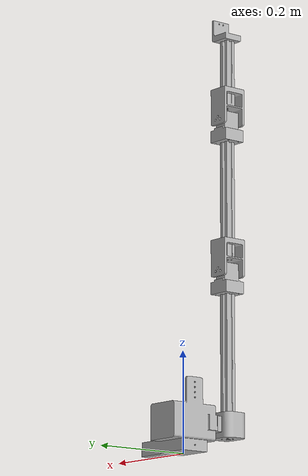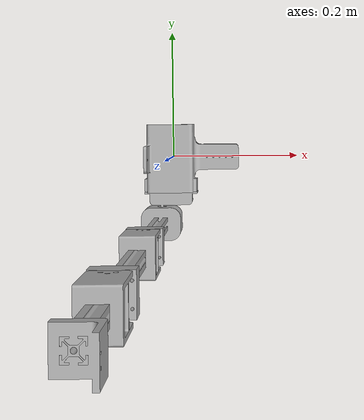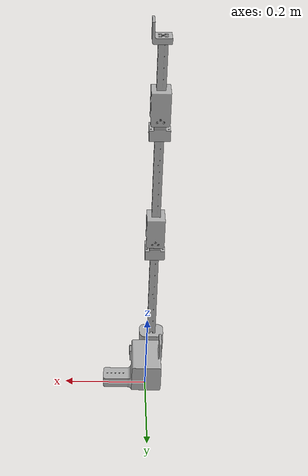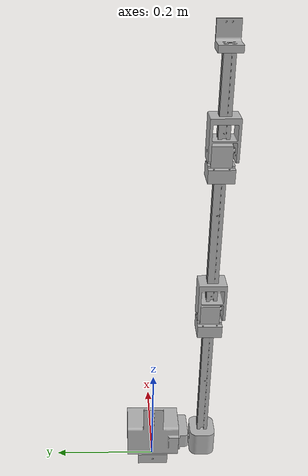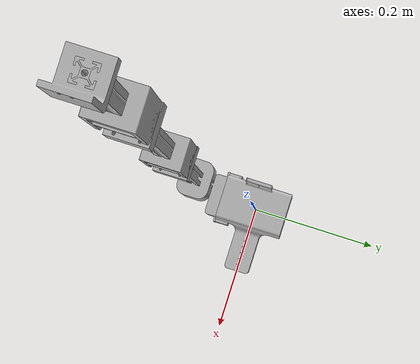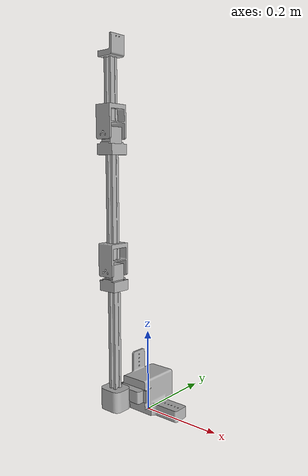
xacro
<?xml version="1.0" ?>
<robot name="Manip_revis" xmlns:xacro="http://www.ros.org/wiki/xacro">

<xacro:include filename="$(find manip_revis_description)/urdf/materials.xacro" />
<xacro:include filename="$(find manip_revis_description)/urdf/Manip_revis.ros2control" />
<xacro:include filename="$(find manip_revis_description)/urdf/Manip_revis.gazebo" />
<link name="world"/>
<joint name="world_to_base" type="fixed">
  <parent link="world"/>
  <child link="base_link"/>
  <origin xyz="0 0 0" rpy="0 0 0"/>
</joint>
<link name="base_link">
  <inertial>
    <origin xyz="0.009155815108888382 0.0034514828401321783 0.04700095003612501" rpy="0 0 0"/>
    <mass value="4.33480004831894"/>
    <inertia ixx="0.00709" iyy="0.008382" izz="0.007647" ixy="0.000137" iyz="-0.000195" ixz="0.001478"/>
  </inertial>
  <visual>
    <origin xyz="0 0 0" rpy="0 0 0"/>
    <geometry>
      <mesh filename="package://manip_revis_description/meshes/base_link.stl" scale="0.001 0.001 0.001"/>
    </geometry>
    <material name="silver"/>
  </visual>
  <collision>
    <origin xyz="0 0 0" rpy="0 0 0"/>
    <geometry>
      <mesh filename="package://manip_revis_description/meshes/base_link.stl" scale="0.001 0.001 0.001"/>
    </geometry>
  </collision>
</link>

<link name="suporte_ombro">
  <inertial>
    <origin xyz="-0.0325539842183545 0.0053685899054949915 -3.95516952522712e-16" rpy="0 0 0"/>
    <mass value="0.7923110570486152"/>
    <inertia ixx="0.00023" iyy="0.000347" izz="0.000459" ixy="-1e-06" iyz="0.0" ixz="-0.0"/>
  </inertial>
  <visual>
    <origin xyz="-0.0325 0.052 -0.06" rpy="0 0 0"/>
    <geometry>
      <mesh filename="package://manip_revis_description/meshes/suporte_ombro.stl" scale="0.001 0.001 0.001"/>
    </geometry>
    <material name="silver"/>
  </visual>
  <collision>
    <origin xyz="-0.0325 0.052 -0.06" rpy="0 0 0"/>
    <geometry>
      <mesh filename="package://manip_revis_description/meshes/suporte_ombro.stl" scale="0.001 0.001 0.001"/>
    </geometry>
  </collision>
</link>

<link name="elo_ombro">
  <inertial>
    <origin xyz="3.991598718222633e-15 -0.02209521446720704 -5.273559366969494e-16" rpy="0 0 0"/>
    <mass value="1.0271366636708665"/>
    <inertia ixx="0.000419" iyy="0.000511" izz="0.0005" ixy="-0.0" iyz="-0.0" ixz="-0.0"/>
  </inertial>
  <visual>
    <origin xyz="0.015 0.0785 -0.06" rpy="0 0 0"/>
    <geometry>
      <mesh filename="package://manip_revis_description/meshes/elo_ombro.stl" scale="0.001 0.001 0.001"/>
    </geometry>
    <material name="silver"/>
  </visual>
  <collision>
    <origin xyz="0.015 0.0785 -0.06" rpy="0 0 0"/>
    <geometry>
      <mesh filename="package://manip_revis_description/meshes/elo_ombro.stl" scale="0.001 0.001 0.001"/>
    </geometry>
  </collision>
</link>

<link name="braco">
  <inertial>
    <origin xyz="-0.004000000000000281 5.471363147269148e-08 0.1501179664756108" rpy="0 0 0"/>
    <mass value="0.12911789574228458"/>
    <inertia ixx="0.000973" iyy="0.000973" izz="1.1e-05" ixy="0.0" iyz="0.0" ixz="0.0"/>
  </inertial>
  <visual>
    <origin xyz="0.011 0.1005 -0.035" rpy="0 0 0"/>
    <geometry>
      <mesh filename="package://manip_revis_description/meshes/braco.stl" scale="0.001 0.001 0.001"/>
    </geometry>
    <material name="silver"/>
  </visual>
  <collision>
    <origin xyz="0.011 0.1005 -0.035" rpy="0 0 0"/>
    <geometry>
      <mesh filename="package://manip_revis_description/meshes/braco.stl" scale="0.001 0.001 0.001"/>
    </geometry>
  </collision>
</link>

<link name="garfo_cotovelo_1">
  <inertial>
    <origin xyz="0.003949880865941452 -2.413930591943503e-07 -0.0029384133486902164" rpy="0 0 0"/>
    <mass value="0.3034443651771143"/>
    <inertia ixx="7.9e-05" iyy="7.8e-05" izz="0.000127" ixy="-0.0" iyz="0.0" ixz="-0.0"/>
  </inertial>
  <visual>
    <origin xyz="0.019 0.1005 -0.335" rpy="0 0 0"/>
    <geometry>
      <mesh filename="package://manip_revis_description/meshes/garfo_cotovelo_1.stl" scale="0.001 0.001 0.001"/>
    </geometry>
    <material name="silver"/>
  </visual>
  <collision>
    <origin xyz="0.019 0.1005 -0.335" rpy="0 0 0"/>
    <geometry>
      <mesh filename="package://manip_revis_description/meshes/garfo_cotovelo_1.stl" scale="0.001 0.001 0.001"/>
    </geometry>
  </collision>
</link>

<link name="garfo_cotovelo_2">
  <inertial>
    <origin xyz="-2.4494295480792516e-15 -7.067951739336831e-05 0.02354307476678441" rpy="0 0 0"/>
    <mass value="0.3465493378432902"/>
    <inertia ixx="0.000102" iyy="8.3e-05" izz="5.7e-05" ixy="-0.0" iyz="0.0" ixz="0.0"/>
  </inertial>
  <visual>
    <origin xyz="0.015 0.1005 -0.335" rpy="0 0 0"/>
    <geometry>
      <mesh filename="package://manip_revis_description/meshes/garfo_cotovelo_2.stl" scale="0.001 0.001 0.001"/>
    </geometry>
    <material name="silver"/>
  </visual>
  <collision>
    <origin xyz="0.015 0.1005 -0.335" rpy="0 0 0"/>
    <geometry>
      <mesh filename="package://manip_revis_description/meshes/garfo_cotovelo_2.stl" scale="0.001 0.001 0.001"/>
    </geometry>
  </collision>
</link>

<link name="elo_cotovelo">
  <inertial>
    <origin xyz="3.869193333783105e-11 0.020782878183679854 0.031157961678787427" rpy="0 0 0"/>
    <mass value="0.37940108482400686"/>
    <inertia ixx="0.000347" iyy="0.000253" izz="0.000213" ixy="-0.0" iyz="-0.0" ixz="0.0"/>
  </inertial>
  <visual>
    <origin xyz="0.015 0.122901 -0.371" rpy="0 0 0"/>
    <geometry>
      <mesh filename="package://manip_revis_description/meshes/elo_cotovelo.stl" scale="0.001 0.001 0.001"/>
    </geometry>
    <material name="silver"/>
  </visual>
  <collision>
    <origin xyz="0.015 0.122901 -0.371" rpy="0 0 0"/>
    <geometry>
      <mesh filename="package://manip_revis_description/meshes/elo_cotovelo.stl" scale="0.001 0.001 0.001"/>
    </geometry>
  </collision>
</link>

<link name="antebraco">
  <inertial>
    <origin xyz="9.384793143996095e-09 2.9592124473065695e-07 0.1250833750583238" rpy="0 0 0"/>
    <mass value="0.10755720068938877"/>
    <inertia ixx="0.000564" iyy="0.000564" izz="9e-06" ixy="0.0" iyz="0.0" ixz="0.0"/>
  </inertial>
  <visual>
    <origin xyz="0.015 0.102141 -0.393" rpy="0 0 0"/>
    <geometry>
      <mesh filename="package://manip_revis_description/meshes/antebraco.stl" scale="0.001 0.001 0.001"/>
    </geometry>
    <material name="silver"/>
  </visual>
  <collision>
    <origin xyz="0.015 0.102141 -0.393" rpy="0 0 0"/>
    <geometry>
      <mesh filename="package://manip_revis_description/meshes/antebraco.stl" scale="0.001 0.001 0.001"/>
    </geometry>
  </collision>
</link>

<link name="garfo_punho_1">
  <inertial>
    <origin xyz="0.003950612913704705 4.880532458173548e-07 -0.0029384127824459982" rpy="0 0 0"/>
    <mass value="0.3034443651771143"/>
    <inertia ixx="7.9e-05" iyy="7.8e-05" izz="0.000127" ixy="-0.0" iyz="-0.0" ixz="0.0"/>
  </inertial>
  <visual>
    <origin xyz="0.019 0.102141 -0.643" rpy="0 0 0"/>
    <geometry>
      <mesh filename="package://manip_revis_description/meshes/garfo_punho_1.stl" scale="0.001 0.001 0.001"/>
    </geometry>
    <material name="silver"/>
  </visual>
  <collision>
    <origin xyz="0.019 0.102141 -0.643" rpy="0 0 0"/>
    <geometry>
      <mesh filename="package://manip_revis_description/meshes/garfo_punho_1.stl" scale="0.001 0.001 0.001"/>
    </geometry>
  </collision>
</link>

<link name="garfo_punho_2">
  <inertial>
    <origin xyz="-2.7998436902265667e-15 -7.043285720688408e-05 0.023543075333028685" rpy="0 0 0"/>
    <mass value="0.3465493378432902"/>
    <inertia ixx="0.000102" iyy="8.3e-05" izz="5.7e-05" ixy="-0.0" iyz="0.0" ixz="-0.0"/>
  </inertial>
  <visual>
    <origin xyz="0.015 0.102141 -0.643" rpy="0 0 0"/>
    <geometry>
      <mesh filename="package://manip_revis_description/meshes/garfo_punho_2.stl" scale="0.001 0.001 0.001"/>
    </geometry>
    <material name="silver"/>
  </visual>
  <collision>
    <origin xyz="0.015 0.102141 -0.643" rpy="0 0 0"/>
    <geometry>
      <mesh filename="package://manip_revis_description/meshes/garfo_punho_2.stl" scale="0.001 0.001 0.001"/>
    </geometry>
  </collision>
</link>

<link name="elo_punho">
  <inertial>
    <origin xyz="3.869436715486785e-11 0.020783124843866366 0.031157962245031756" rpy="0 0 0"/>
    <mass value="0.37940108482400686"/>
    <inertia ixx="0.000347" iyy="0.000253" izz="0.000213" ixy="-0.0" iyz="-0.0" ixz="0.0"/>
  </inertial>
  <visual>
    <origin xyz="0.015 0.124542 -0.679" rpy="0 0 0"/>
    <geometry>
      <mesh filename="package://manip_revis_description/meshes/elo_punho.stl" scale="0.001 0.001 0.001"/>
    </geometry>
    <material name="silver"/>
  </visual>
  <collision>
    <origin xyz="0.015 0.124542 -0.679" rpy="0 0 0"/>
    <geometry>
      <mesh filename="package://manip_revis_description/meshes/elo_punho.stl" scale="0.001 0.001 0.001"/>
    </geometry>
  </collision>
</link>

<link name="suporte_efetuador">
  <inertial>
    <origin xyz="-1.2333883914195098e-15 5.480340106722714e-07 0.07513000499949785" rpy="0 0 0"/>
    <mass value="0.06455894785914394"/>
    <inertia ixx="0.000123" iyy="0.000123" izz="5e-06" ixy="0.0" iyz="0.0" ixz="-0.0"/>
  </inertial>
  <visual>
    <origin xyz="0.015 0.103782 -0.701" rpy="0 0 0"/>
    <geometry>
      <mesh filename="package://manip_revis_description/meshes/suporte_efetuador.stl" scale="0.001 0.001 0.001"/>
    </geometry>
    <material name="silver"/>
  </visual>
  <collision>
    <origin xyz="0.015 0.103782 -0.701" rpy="0 0 0"/>
    <geometry>
      <mesh filename="package://manip_revis_description/meshes/suporte_efetuador.stl" scale="0.001 0.001 0.001"/>
    </geometry>
  </collision>
</link>

<link name="flange_ferramenta">
  <inertial>
    <origin xyz="0.007581862842638972 0.004000493320373694 0.00022481405314167535" rpy="0 0 0"/>
    <mass value="0.1891882730231785"/>
    <inertia ixx="5.2e-05" iyy="5.8e-05" izz="5.9e-05" ixy="-0.0" iyz="-0.0" ixz="-1.5e-05"/>
  </inertial>
  <visual>
    <origin xyz="0.015 0.107782 -0.851" rpy="0 0 0"/>
    <geometry>
      <mesh filename="package://manip_revis_description/meshes/flange_ferramenta.stl" scale="0.001 0.001 0.001"/>
    </geometry>
    <material name="silver"/>
  </visual>
  <collision>
    <origin xyz="0.015 0.107782 -0.851" rpy="0 0 0"/>
    <geometry>
      <mesh filename="package://manip_revis_description/meshes/flange_ferramenta.stl" scale="0.001 0.001 0.001"/>
    </geometry>
  </collision>
</link>

<joint name="fixo_suporte_ombro" type="fixed">
  <origin xyz="0.0325 -0.052 0.06" rpy="0 0 0"/>
  <parent link="base_link"/>
  <child link="suporte_ombro"/>
</joint>

<joint name="junta_ombro" type="revolute">
  <origin xyz="-0.0475 -0.0265 0.0" rpy="0 0 0"/>
  <limit lower="-1.57" upper="1.57" effort="15.0" velocity="2.0"/>
  <parent link="suporte_ombro"/>
  <child link="elo_ombro"/>
  <axis xyz="0.0 -1.0 0.0"/>
</joint>

<joint name="fixo_braco" type="fixed">
  <origin xyz="0.004 -0.022 -0.025" rpy="0 0 0"/>
  <parent link="elo_ombro"/>
  <child link="braco"/>
</joint>

<joint name="fixo_garfo_cotovelo_1" type="fixed">
  <origin xyz="-0.008 0.0 0.3" rpy="0 0 0"/>
  <parent link="braco"/>
  <child link="garfo_cotovelo_1"/>
</joint>

<joint name="fixo_garfo_cotovelo_2" type="fixed">
  <origin xyz="-0.004 0.0 0.3" rpy="0 0 0"/>
  <parent link="braco"/>
  <child link="garfo_cotovelo_2"/>
</joint>

<joint name="junta_cotovelo" type="revolute">
  <origin xyz="0.0 -0.022401 0.036" rpy="0 0 0"/>
  <limit lower="-1.57" upper="1.57" effort="15.0" velocity="2.0"/>
  <parent link="garfo_cotovelo_2"/>
  <child link="elo_cotovelo"/>
  <axis xyz="-0.0 -1.0 0.0"/>
</joint>

<joint name="fixo_antebraco" type="fixed">
  <origin xyz="0.0 0.02076 0.022" rpy="0 0 0"/>
  <parent link="elo_cotovelo"/>
  <child link="antebraco"/>
</joint>

<joint name="fixo_garfo_punho_1" type="fixed">
  <origin xyz="-0.004 0.0 0.25" rpy="0 0 0"/>
  <parent link="antebraco"/>
  <child link="garfo_punho_1"/>
</joint>

<joint name="fixo_garfo_punho_2" type="fixed">
  <origin xyz="0.0 0.0 0.25" rpy="0 0 0"/>
  <parent link="antebraco"/>
  <child link="garfo_punho_2"/>
</joint>

<joint name="junta_punho" type="revolute">
  <origin xyz="0.0 -0.022401 0.036" rpy="0 0 0"/>
  <limit lower="-1.57" upper="1.57" effort="15.0" velocity="2.0"/>
  <parent link="garfo_punho_2"/>
  <child link="elo_punho"/>
  <axis xyz="-0.0 -1.0 0.0"/>
</joint>

<joint name="fixo_suporte_efetuador" type="fixed">
  <origin xyz="0.0 0.02076 0.022" rpy="0 0 0"/>
  <parent link="elo_punho"/>
  <child link="suporte_efetuador"/>
</joint>

<joint name="fixo_flange_ferramenta" type="fixed">
  <origin xyz="0.0 -0.004 0.15" rpy="0 0 0"/>
  <parent link="suporte_efetuador"/>
  <child link="flange_ferramenta"/>
</joint>

</robot>

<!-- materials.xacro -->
<robot name="Manip_revis" xmlns:xacro="http://www.ros.org/wiki/xacro" >

<material name="silver">
  <color rgba="0.700 0.700 0.700 1.000"/>
</material>

</robot>

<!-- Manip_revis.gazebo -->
<robot name="Manip_revis" xmlns:xacro="http://www.ros.org/wiki/xacro" >

<xacro:property name="body_color" value="Gazebo/Silver" />

<gazebo reference="base_link">
  <material>${body_color}</material>
  <mu1>0.2</mu1>
  <mu2>0.2</mu2>
  <self_collide>true</self_collide>
  <gravity>true</gravity>
</gazebo>

<gazebo reference="suporte_ombro">
  <material>${body_color}</material>
  <mu1>0.2</mu1>
  <mu2>0.2</mu2>
  <self_collide>true</self_collide>
</gazebo>

<gazebo reference="elo_ombro">
  <material>${body_color}</material>
  <mu1>0.2</mu1>
  <mu2>0.2</mu2>
  <self_collide>true</self_collide>
</gazebo>

<gazebo reference="braco">
  <material>${body_color}</material>
  <mu1>0.2</mu1>
  <mu2>0.2</mu2>
  <self_collide>true</self_collide>
</gazebo>

<gazebo reference="garfo_cotovelo_1">
  <material>${body_color}</material>
  <mu1>0.2</mu1>
  <mu2>0.2</mu2>
  <self_collide>true</self_collide>
</gazebo>

<gazebo reference="garfo_cotovelo_2">
  <material>${body_color}</material>
  <mu1>0.2</mu1>
  <mu2>0.2</mu2>
  <self_collide>true</self_collide>
</gazebo>

<gazebo reference="elo_cotovelo">
  <material>${body_color}</material>
  <mu1>0.2</mu1>
  <mu2>0.2</mu2>
  <self_collide>true</self_collide>
</gazebo>

<gazebo reference="antebraco">
  <material>${body_color}</material>
  <mu1>0.2</mu1>
  <mu2>0.2</mu2>
  <self_collide>true</self_collide>
</gazebo>

<gazebo reference="garfo_punho_1">
  <material>${body_color}</material>
  <mu1>0.2</mu1>
  <mu2>0.2</mu2>
  <self_collide>true</self_collide>
</gazebo>

<gazebo reference="garfo_punho_2">
  <material>${body_color}</material>
  <mu1>0.2</mu1>
  <mu2>0.2</mu2>
  <self_collide>true</self_collide>
</gazebo>

<gazebo reference="elo_punho">
  <material>${body_color}</material>
  <mu1>0.2</mu1>
  <mu2>0.2</mu2>
  <self_collide>true</self_collide>
</gazebo>

<gazebo reference="suporte_efetuador">
  <material>${body_color}</material>
  <mu1>0.2</mu1>
  <mu2>0.2</mu2>
  <self_collide>true</self_collide>
</gazebo>

<gazebo reference="flange_ferramenta">
  <material>${body_color}</material>
  <mu1>0.2</mu1>
  <mu2>0.2</mu2>
  <self_collide>true</self_collide>
</gazebo>

</robot>
